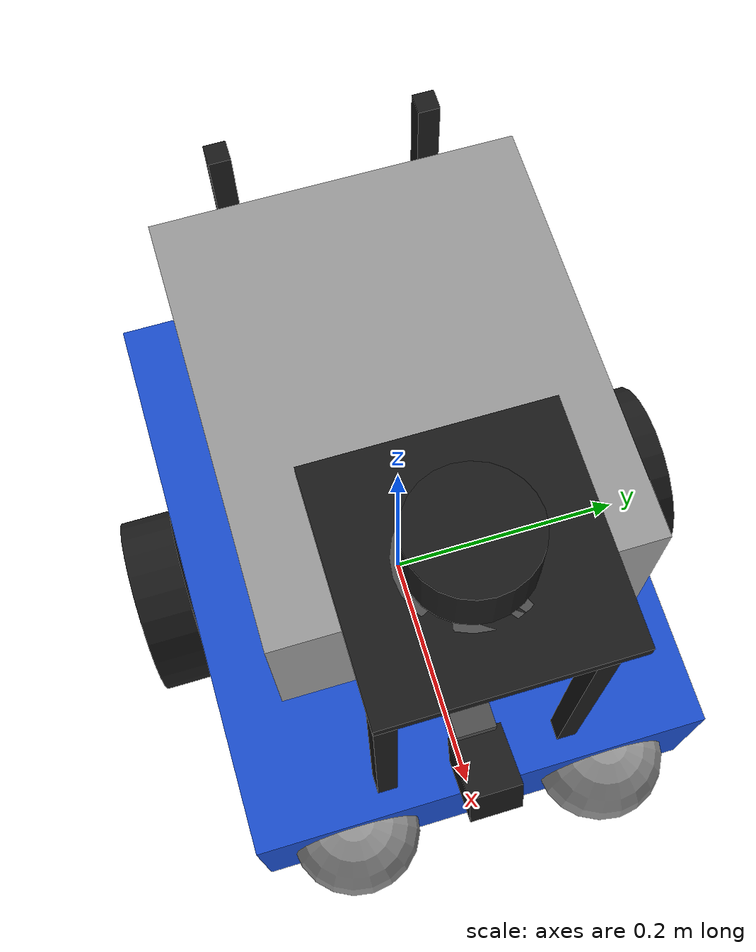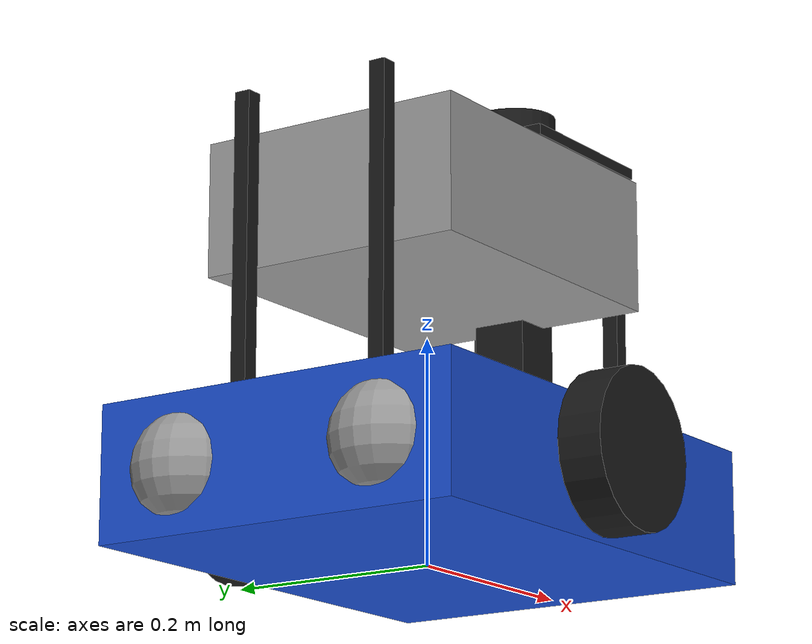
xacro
<?xml version="1.0"?>

<robot
    name="campus_robot"
    xmlns:xacro="http://www.ros.org/wiki/xacro">

    <!-- Include component files -->
    <xacro:include filename="materials.xacro"/>
    <xacro:include filename="chassis.xacro"/>
    <xacro:include filename="wheels.xacro"/>
    <xacro:include filename="sensors.xacro"/>
    <xacro:include filename="gazebo_plugins.xacro"/>

</robot>

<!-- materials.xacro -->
<robot xmlns:xacro="http://www.ros.org/wiki/xacro">

    <!-- Robot Materials                 -->

    <material name="black">
        <color rgba="0.1 0.1 0.1 1"/>
    </material>

    <material name="dark_grey">
        <color rgba="0.3 0.3 0.3 1"/>
    </material>

    <material name="grey">
        <color rgba="0.6 0.6 0.6 1"/>
    </material>

    <material name="white">
        <color rgba="1 1 1 1"/>
    </material>

    <material name="blue">
        <color rgba="0.1 0.3 0.8 1"/>
    </material>

    <material name="red">
        <color rgba="0.85 0.1 0.1 1"/>
    </material>

    <material name="green">
        <color rgba="0.1 0.8 0.2 1"/>
    </material>

    <material name="orange">
        <color rgba="1.0 0.5 0.0 1"/>
    </material>

</robot>

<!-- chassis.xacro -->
<robot xmlns:xacro="http://www.ros.org/wiki/xacro">

    <!-- Base Chassis                  -->

    <link name="base_link">

        <visual>
            <origin xyz="0 0 0.06"/>
            <geometry>
                <box size="0.45 0.35 0.12"/>
            </geometry>

            <material name="blue"/>
        </visual>

        <collision>
            <origin xyz="0 0 0.06"/>
            <geometry>
                <box size="0.45 0.35 0.12"/>
            </geometry>
        </collision>

        <inertial>
            <origin xyz="0 0 0.06"/>

            <mass value="8"/>

            <inertia
                ixx="0.12"
                ixy="0"
                ixz="0"
                iyy="0.18"
                iyz="0"
                izz="0.25"/>

        </inertial>

    </link>

    <!-- Parcel Box                    -->

    <link name="parcel_box">

        <visual>

            <origin xyz="0 0 0.18"/>

            <geometry>
                <box size="0.30 0.25 0.12"/>
            </geometry>

            <material name="grey"/>

        </visual>

        <collision>

            <origin xyz="0 0 0.18"/>

            <geometry>
                <box size="0.30 0.25 0.12"/>
            </geometry>

        </collision>

        <inertial>

            <origin xyz="0 0 0.18"/>

            <mass value="1.5"/>

            <inertia
                ixx="0.02"
                ixy="0"
                ixz="0"
                iyy="0.02"
                iyz="0"
                izz="0.02"/>

        </inertial>

    </link>

    <joint
        name="parcel_box_joint"
        type="fixed">

        <parent link="base_link"/>

        <child link="parcel_box"/>

        <origin xyz="0 0 0.12"/>

    </joint>

</robot>

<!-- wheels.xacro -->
<robot xmlns:xacro="http://www.ros.org/wiki/xacro">

    <!-- Robot Dimensions              -->

    <xacro:property name="wheel_radius" value="0.07"/>
    <xacro:property name="wheel_width" value="0.04"/>

    <!-- Left Wheel                    -->

    <link name="left_wheel">

        <visual>
            <origin xyz="0 0 0" rpy="1.5708 0 0"/>
            <geometry>
                <cylinder radius="${wheel_radius}"
                          length="${wheel_width}"/>
            </geometry>
            <material name="black"/>
        </visual>

        <collision>
            <origin xyz="0 0 0" rpy="1.5708 0 0"/>
            <geometry>
                <cylinder radius="${wheel_radius}"
                          length="${wheel_width}"/>
            </geometry>
        </collision>

        <inertial>
            <mass value="0.5"/>
            <origin xyz="0 0 0"/>
            <inertia
                ixx="0.001"
                ixy="0"
                ixz="0"
                iyy="0.001"
                iyz="0"
                izz="0.001"/>
        </inertial>

    </link>

    <joint name="left_wheel_joint" type="continuous">

        <parent link="base_link"/>
        <child link="left_wheel"/>

        <origin xyz="0 0.195 0.075"/>

        <axis xyz="0 1 0"/>

    </joint>

    <!-- Right Wheel                   -->

    <link name="right_wheel">

        <visual>
            <origin xyz="0 0 0" rpy="1.5708 0 0"/>
            <geometry>
                <cylinder radius="${wheel_radius}"
                          length="${wheel_width}"/>
            </geometry>
            <material name="black"/>
        </visual>

        <collision>
            <origin xyz="0 0 0" rpy="1.5708 0 0"/>
            <geometry>
                <cylinder radius="${wheel_radius}"
                          length="${wheel_width}"/>
            </geometry>
        </collision>

        <inertial>
            <mass value="0.5"/>
            <origin xyz="0 0 0"/>
            <inertia
                ixx="0.001"
                ixy="0"
                ixz="0"
                iyy="0.001"
                iyz="0"
                izz="0.001"/>
        </inertial>

    </link>

    <joint name="right_wheel_joint" type="continuous">

        <parent link="base_link"/>
        <child link="right_wheel"/>

        <origin xyz="0 -0.195 0.075"/>

        <axis xyz="0 1 0"/>

    </joint>

    <!-- Rear Caster Left              -->

    <link name="caster_wheel_left">
        <visual>
            <geometry>
                <sphere radius="0.05"/>   <!-- bigger radius — more stable -->
            </geometry>
            <material name="grey"/>
        </visual>
        <collision>
            <geometry>
                <sphere radius="0.05"/>
            </geometry>
        </collision>
        <inertial>
            <mass value="0.3"/>
            <origin xyz="0 0 0"/>
            <inertia
                ixx="0.0003"
                ixy="0"
                ixz="0"
                iyy="0.0003"
                iyz="0"
                izz="0.0003"/>
        </inertial>
    </link>

    <joint name="caster_left_joint" type="fixed">
        <parent link="base_link"/>
        <child link="caster_wheel_left"/>
        <origin xyz="-0.20 0.10 0.06"/>  <!-- rear, spread left -->
    </joint>

    <!-- Rear Caster Right             -->

    <link name="caster_wheel_right">
        <visual>
            <geometry>
                <sphere radius="0.05"/>
            </geometry>
            <material name="grey"/>
        </visual>
        <collision>
            <geometry>
                <sphere radius="0.05"/>
            </geometry>
        </collision>
        <inertial>
            <mass value="0.3"/>
            <origin xyz="0 0 0"/>
            <inertia
                ixx="0.0003"
                ixy="0"
                ixz="0"
                iyy="0.0003"
                iyz="0"
                izz="0.0003"/>
        </inertial>
    </link>

    <joint name="caster_right_joint" type="fixed">
        <parent link="base_link"/>
        <child link="caster_wheel_right"/>
        <origin xyz="-0.20 -0.10 0.06"/>  <!-- rear, spread right -->
    </joint>

    <!-- Front Caster Left -->
    <link name="caster_front_left">
        <visual>
            <geometry><sphere radius="0.05"/></geometry>
            <material name="grey"/>
        </visual>
        <collision>
            <geometry><sphere radius="0.05"/></geometry>
        </collision>
        <inertial>
            <mass value="0.3"/>
            <origin xyz="0 0 0"/>
            <inertia ixx="0.0003" ixy="0" ixz="0"
                    iyy="0.0003" iyz="0" izz="0.0003"/>
        </inertial>
    </link>

    <joint name="caster_front_left_joint" type="fixed">
        <parent link="base_link"/>
        <child link="caster_front_left"/>
        <origin xyz="0.22 0.10 0.06"/>
    </joint>

    <!-- Front Caster Right -->
    <link name="caster_front_right">
        <visual>
            <geometry><sphere radius="0.05"/></geometry>
            <material name="grey"/>
        </visual>
        <collision>
            <geometry><sphere radius="0.05"/></geometry>
        </collision>
        <inertial>
            <mass value="0.3"/>
            <origin xyz="0 0 0"/>
            <inertia ixx="0.0003" ixy="0" ixz="0"
                    iyy="0.0003" iyz="0" izz="0.0003"/>
        </inertial>
    </link>

    <joint name="caster_front_right_joint" type="fixed">
        <parent link="base_link"/>
        <child link="caster_front_right"/>
        <origin xyz="0.22 -0.10 0.06"/>
    </joint>

</robot>

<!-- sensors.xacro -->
<robot xmlns:xacro="http://www.ros.org/wiki/xacro">

    <!-- Sensor Tower                     -->

    <link name="sensor_tower">

        <visual>

            <geometry>
                <box size="0.05 0.05 0.14"/>
            </geometry>

            <material name="black"/>

        </visual>

        <collision>

            <geometry>
                <box size="0.05 0.05 0.14"/>
            </geometry>

        </collision>

        <inertial>

            <mass value="0.5"/>

            <origin xyz="0 0 0"/>

            <inertia
                ixx="0.001"
                ixy="0"
                ixz="0"
                iyy="0.001"
                iyz="0"
                izz="0.001"/>

        </inertial>

    </link>

    <joint
        name="sensor_tower_joint"
        type="fixed">

        <parent link="base_link"/>

        <child link="sensor_tower"/>

        <origin xyz="0.14 0 0.19"/>

    </joint>

    <!-- LiDAR Mount Ring                 -->
    <!-- (no collision — visual only)     -->

    <link name="lidar_base_link">
        <visual>
            <geometry>
                <cylinder radius="0.045" length="0.02"/>
            </geometry>
            <material name="dark_grey"/>
        </visual>
        <!-- NO collision block — mount ring must not block laser rays -->
        <inertial>
            <mass value="0.05"/>
            <inertia ixx="0.0001" ixy="0" ixz="0"
                     iyy="0.0001" iyz="0"
                     izz="0.0001"/>
        </inertial>
    </link>

    <!-- z=0.20 from tower centre → puts mount ring at 0.19+0.20 = 0.39 m -->
    <!-- That is already above parcel box top (0.36 m)... wait:             -->
    <!-- 0.34 m mount + 0.03 m lidar_joint = 0.37 m for lidar_link ✓       -->
    <joint name="lidar_base_joint" type="fixed">
        <parent link="sensor_tower"/>
        <child  link="lidar_base_link"/>
        <origin xyz="0.0 0.0 0.20" rpy="0 0 0"/>
    </joint>

    <!-- LiDAR Sensor Link                -->
    <!-- (scan frame — tiny collision)    -->

    <link name="lidar_link">
        <visual>
            <geometry>
                <!-- Thin rotating disc — purely cosmetic -->
                <cylinder radius="0.04" length="0.04"/>
            </geometry>
            <material name="black"/>
        </visual>
        <!-- Near-zero collision so rays never hit the lidar body itself -->
        <collision>
            <geometry>
                <box size="0.001 0.001 0.001"/>
            </geometry>
        </collision>
        <inertial>
            <mass value="0.1"/>
            <inertia ixx="0.0001" ixy="0" ixz="0"
                     iyy="0.0001" iyz="0"
                     izz="0.0001"/>
        </inertial>
    </link>

    <!-- lidar_link = 0.03 m above mount ring                              -->
    <!-- Final height from base_link: 0.19 + 0.15 + 0.03 = 0.37 m        -->
    <!-- Parcel box top = 0.36 m  →  LiDAR clears by 1 cm ✓               -->
    <joint name="lidar_joint" type="fixed">
        <parent link="lidar_base_link"/>
        <child  link="lidar_link"/>
        <origin xyz="0.0 0.0 0.03" rpy="0 -0.035 0"/>
    </joint>

    <!-- Camera Mount                          -->
    <!-- (no collision — must not block scans) -->

    <link name="camera_mount">

        <visual>

            <geometry>
                <box size="0.03 0.03 0.05"/>
            </geometry>

            <material name="dark_grey"/>

        </visual>

        <!-- NO collision block — camera mount must not block LiDAR rays -->

    </link>

    <joint
        name="camera_mount_joint"
        type="fixed">

        <parent link="sensor_tower"/>

        <child link="camera_mount"/>

        <origin xyz="0.04 0 -0.04"/>

    </joint>

    <!-- RGB Camera                            -->
    <!-- (no collision — must not block scans) -->

    <link name="camera_link">

        <visual>

            <geometry>
                <box size="0.05 0.04 0.04"/>
            </geometry>

            <material name="black"/>

        </visual>

        <!-- NO collision block — camera body must not block LiDAR rays -->

    </link>

    <joint
        name="camera_joint"
        type="fixed">

        <parent link="camera_mount"/>

        <child link="camera_link"/>

        <origin xyz="0.04 0 0"
                rpy="0 -0.25 0"/>

    </joint>

    <!-- Camera Optical Frame                  -->
    <!-- REP-103 optical convention: Z forward -->
    <!-- into the scene, X right, Y down. The  -->
    <!-- Gazebo depth camera plugin computes   -->
    <!-- depth/point-cloud data in THIS frame, -->
    <!-- so gazebo_plugins.xacro must publish  -->
    <!-- with frame_name=camera_link_optical   -->
    <!-- (not the physical camera_link, whose  -->
    <!-- axes are X-forward/Z-up) or vision    -->
    <!-- obstacles land in the wrong place.    -->

    <link name="camera_link_optical"/>

    <joint
        name="camera_optical_joint"
        type="fixed">

        <parent link="camera_link"/>

        <child link="camera_link_optical"/>

        <origin xyz="0 0 0"
                rpy="-1.5708 0 -1.5708"/>

    </joint>

    <!-- IMU                                   -->

    <link name="imu_link">

        <visual>

            <geometry>
                <box size="0.02 0.02 0.01"/>
            </geometry>

            <material name="orange"/>

        </visual>

    </link>

    <joint
        name="imu_joint"
        type="fixed">

        <parent link="base_link"/>

        <child link="imu_link"/>

        <origin xyz="0 0 0.09"/>

    </joint>

    <!-- 4-Corner LiDAR Frame: FL, FR, RL, RR posts -->
    <!-- bottom z=0.14 (2mm above chassis top), top z=0.39 (below LiDAR scan at 0.42) -->

    <link name="lidar_post_fl">
        <visual><geometry><box size="0.015 0.015 0.33"/></geometry><material name="black"/></visual>
        <collision><geometry><box size="0.015 0.015 0.33"/></geometry></collision>
        <inertial><mass value="0.15"/><origin xyz="0 0 0"/>
            <inertia ixx="0.001" ixy="0" ixz="0" iyy="0.001" iyz="0" izz="0.00005"/></inertial>
    </link>
    <joint name="lidar_post_fl_joint" type="fixed">
        <parent link="base_link"/><child link="lidar_post_fl"/>
        <origin xyz="0.20 0.07 0.225"/>
    </joint>

     <link name="lidar_post_fr">
        <visual><geometry><box size="0.015 0.015 0.33"/></geometry><material name="black"/></visual>
        <collision><geometry><box size="0.015 0.015 0.33"/></geometry></collision>
        <inertial><mass value="0.15"/><origin xyz="0 0 0"/>
            <inertia ixx="0.001" ixy="0" ixz="0" iyy="0.001" iyz="0" izz="0.00005"/></inertial>
    </link>
    <joint name="lidar_post_fr_joint" type="fixed">
        <parent link="base_link"/><child link="lidar_post_fr"/>
        <origin xyz="0.20 -0.07 0.225"/>
    </joint>

    <link name="lidar_post_rl">
        <visual><geometry><box size="0.015 0.015 0.33"/></geometry><material name="black"/></visual>
        <collision><geometry><box size="0.015 0.015 0.33"/></geometry></collision>
        <inertial><mass value="0.15"/><origin xyz="0 0 0"/>
            <inertia ixx="0.001" ixy="0" ixz="0" iyy="0.001" iyz="0" izz="0.00005"/></inertial>
    </link>
    <joint name="lidar_post_rl_joint" type="fixed">
        <parent link="base_link"/><child link="lidar_post_rl"/>
        <origin xyz="-0.17 0.07 0.225"/>
    </joint>

    <link name="lidar_post_rr">
        <visual><geometry><box size="0.015 0.015 0.33"/></geometry><material name="black"/></visual>
        <collision><geometry><box size="0.015 0.015 0.33"/></geometry></collision>
        <inertial><mass value="0.15"/><origin xyz="0 0 0"/>
            <inertia ixx="0.001" ixy="0" ixz="0" iyy="0.001" iyz="0" izz="0.00005"/></inertial>
    </link>
    <joint name="lidar_post_rr_joint" type="fixed">
        <parent link="base_link"/><child link="lidar_post_rr"/>
        <origin xyz="-0.17 -0.07 0.225"/>
    </joint>

    <!-- Top plate tying all 4 posts together -->
    <link name="lidar_top_plate">
        <visual><geometry><box size="0.16 0.16 0.01"/></geometry><material name="black"/></visual>
        <collision><geometry><box size="0.16 0.16 0.01"/></geometry></collision>
        <inertial><mass value="0.1"/><origin xyz="0 0 0"/>
            <inertia ixx="0.0001" ixy="0" ixz="0" iyy="0.0001" iyz="0" izz="0.0002"/></inertial>
    </link>
    <joint name="lidar_top_plate_joint" type="fixed">
        <parent link="base_link"/><child link="lidar_top_plate"/>
        <origin xyz="0.14 0.0 0.395"/>
    </joint>

</robot>
